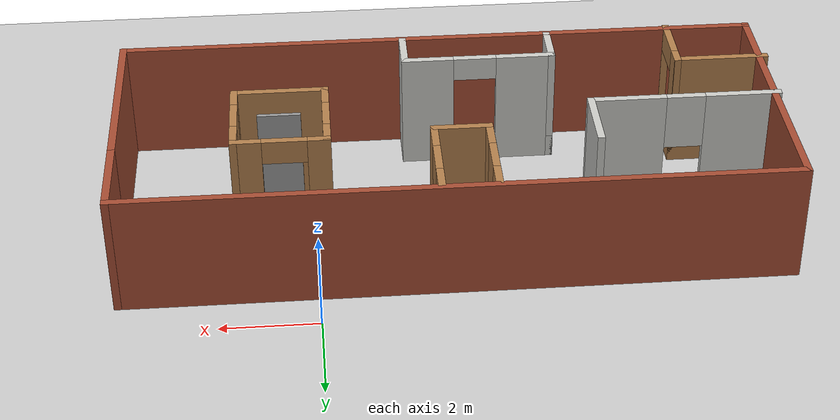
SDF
<sdf version="1.7">
 <world name="default">
  <light name="sun" type="directional">
   <pose>0 0 10 0 -0 0</pose>
   <diffuse>0.8 0.8 0.8 1</diffuse>
   <specular>0.2 0.2 0.2 1</specular>
   <attenuation>
    <range>1000</range>
    <constant>0.9</constant>
    <linear>0.01</linear>
    <quadratic>0.001</quadratic>
   </attenuation>
   <direction>-0.5 0.1 -0.9</direction>
   <spot><inner_angle>0</inner_angle><outer_angle>0</outer_angle><falloff>0</falloff></spot>
  </light>
  <model name="ground_plane">
   <static>1</static>
   <link name="link">
    <collision name="collision">
     <geometry><plane><normal>0 0 1</normal><size>100 100</size></plane></geometry>
     <surface>
      <contact><collide_bitmask>65535</collide_bitmask></contact>
      <friction><ode><mu>100</mu><mu2>50</mu2></ode></friction>
     </surface>
    </collision>
    <visual name="visual">
     <cast_shadows>0</cast_shadows>
     <geometry><plane><normal>0 0 1</normal><size>100 100</size></plane></geometry>
     <material>
      <script><uri>file://media/materials/scripts/gazebo.material</uri><name>Gazebo/Grey</name></script>
     </material>
    </visual>
   </link>
  </model>
  <gravity>0 0 -9.8</gravity>
  <magnetic_field>6e-06 2.3e-05 -4.2e-05</magnetic_field>
  <atmosphere type="adiabatic"/>
  <physics type="ode">
   <max_step_size>0.001</max_step_size>
   <real_time_factor>1</real_time_factor>
   <real_time_update_rate>1000</real_time_update_rate>
  </physics>
  <scene><ambient>0.4 0.4 0.4 1</ambient><background>0.7 0.7 0.7 1</background><shadows>1</shadows></scene>
  <audio><device>default</device></audio>
  <spherical_coordinates>
   <surface_model>EARTH_WGS84</surface_model>
   <latitude_deg>0</latitude_deg>
   <longitude_deg>0</longitude_deg>
   <elevation>0</elevation>
   <heading_deg>0</heading_deg>
  </spherical_coordinates>
  <model name="Untitled">
   <pose>-2.79319 -3.27161 0 0 -0 0</pose>
   <link name="Door_2">
    <collision name="Door_2_Collision">
     <geometry><box><size>0.9 0.17 2</size></box></geometry>
     <pose>0 0 1 0 -0 0</pose>
    </collision>
    <visual name="Door_2_Visual">
     <pose>0 0 1 0 -0 0</pose>
     <geometry><box><size>0.9 0.17 2</size></box></geometry>
     <material>
      <script><uri>file://media/materials/scripts/gazebo.material</uri><name>Gazebo/Grey</name></script>
     </material>
    </visual>
    <pose>3.49956 -1.17505 0 0 -0 0</pose>
   </link>
   <link name="Wall_13">
    <pose>3.45956 0.595396 0 0 -0 3.14159</pose>
    <visual name="Wall_13_Visual_0">
     <pose>-0.684661 0 1.25 0 -0 0</pose>
     <geometry><box><size>0.630679 0.15 2.5</size></box></geometry>
     <material>
      <script><uri>file://media/materials/scripts/gazebo.material</uri><name>Gazebo/Wood</name></script>
      <ambient>1 1 1 1</ambient>
     </material>
     <meta><layer>0</layer></meta>
    </visual>
    <collision name="Wall_13_Collision_0">
     <geometry><box><size>0.630679 0.15 2.5</size></box></geometry>
     <pose>-0.684661 0 1.25 0 -0 0</pose>
    </collision>
    <visual name="Wall_13_Visual_1">
     <pose>0.765339 0 1.25 0 -0 0</pose>
     <geometry><box><size>0.469321 0.15 2.5</size></box></geometry>
     <material>
      <script><uri>file://media/materials/scripts/gazebo.material</uri><name>Gazebo/Wood</name></script>
      <ambient>1 1 1 1</ambient>
     </material>
     <meta><layer>0</layer></meta>
    </visual>
    <collision name="Wall_13_Collision_1">
     <geometry><box><size>0.469321 0.15 2.5</size></box></geometry>
     <pose>0.765339 0 1.25 0 -0 0</pose>
    </collision>
    <visual name="Wall_13_Visual_2">
     <pose>0.080679 0 2.25 0 -0 0</pose>
     <geometry><box><size>0.9 0.15 0.5</size></box></geometry>
     <material>
      <script><uri>file://media/materials/scripts/gazebo.material</uri><name>Gazebo/Wood</name></script>
      <ambient>1 1 1 1</ambient>
     </material>
     <meta><layer>0</layer></meta>
    </visual>
    <collision name="Wall_13_Collision_2">
     <geometry><box><size>0.9 0.15 0.5</size></box></geometry>
     <pose>0.080679 0 2.25 0 -0 0</pose>
    </collision>
   </link>
   <link name="Wall_14">
    <pose>2.53456 -0.329604 0 0 -0 -1.5708</pose>
    <visual name="Wall_14_Visual_0">
     <pose>-0.699664 0 1.25 0 -0 0</pose>
     <geometry><box><size>0.600673 0.15 2.5</size></box></geometry>
     <material>
      <script><uri>file://media/materials/scripts/gazebo.material</uri><name>Gazebo/Wood</name></script>
      <ambient>1 1 1 1</ambient>
     </material>
     <meta><layer>0</layer></meta>
    </visual>
    <collision name="Wall_14_Collision_0">
     <geometry><box><size>0.600673 0.15 2.5</size></box></geometry>
     <pose>-0.699664 0 1.25 0 -0 0</pose>
    </collision>
    <visual name="Wall_14_Visual_1">
     <pose>0.300336 0 0.25 0 -0 0</pose>
     <geometry><box><size>1.39933 0.15 0.5</size></box></geometry>
     <material>
      <script><uri>file://media/materials/scripts/gazebo.material</uri><name>Gazebo/Wood</name></script>
      <ambient>1 1 1 1</ambient>
     </material>
     <meta><layer>0</layer></meta>
    </visual>
    <collision name="Wall_14_Collision_1">
     <geometry><box><size>1.39933 0.15 0.5</size></box></geometry>
     <pose>0.300336 0 0.25 0 -0 0</pose>
    </collision>
    <visual name="Wall_14_Visual_2">
     <pose>0.700336 0 1.5 0 -0 0</pose>
     <geometry><box><size>0.599327 0.15 2</size></box></geometry>
     <material>
      <script><uri>file://media/materials/scripts/gazebo.material</uri><name>Gazebo/Wood</name></script>
      <ambient>1 1 1 1</ambient>
     </material>
     <meta><layer>0</layer></meta>
    </visual>
    <collision name="Wall_14_Collision_2">
     <geometry><box><size>0.599327 0.15 2</size></box></geometry>
     <pose>0.700336 0 1.5 0 -0 0</pose>
    </collision>
    <visual name="Wall_14_Visual_3">
     <pose>0.000673 0 1.9 0 -0 0</pose>
     <geometry><box><size>0.8 0.15 1.2</size></box></geometry>
     <material>
      <script><uri>file://media/materials/scripts/gazebo.material</uri><name>Gazebo/Wood</name></script>
      <ambient>1 1 1 1</ambient>
     </material>
     <meta><layer>0</layer></meta>
    </visual>
    <collision name="Wall_14_Collision_3">
     <geometry><box><size>0.8 0.15 1.2</size></box></geometry>
     <pose>0.000673 0 1.9 0 -0 0</pose>
    </collision>
   </link>
   <link name="Wall_15">
    <collision name="Wall_15_Collision">
     <geometry><box><size>2 0.15 2.5</size></box></geometry>
     <pose>0 0 1.25 0 -0 0</pose>
    </collision>
    <visual name="Wall_15_Visual">
     <pose>0 0 1.25 0 -0 0</pose>
     <geometry><box><size>2 0.15 2.5</size></box></geometry>
     <material>
      <script><uri>file://media/materials/scripts/gazebo.material</uri><name>Gazebo/Wood</name></script>
      <ambient>1 1 1 1</ambient>
     </material>
     <meta><layer>0</layer></meta>
    </visual>
    <pose>3.45956 -1.2546 0 0 -0 0</pose>
   </link>
   <link name="Wall_16">
    <pose>4.38456 -0.329604 0 0 -0 1.5708</pose>
    <visual name="Wall_16_Visual_0">
     <pose>-0.730507 0 1.25 0 -0 0</pose>
     <geometry><box><size>0.538987 0.15 2.5</size></box></geometry>
     <material>
      <script><uri>file://media/materials/scripts/gazebo.material</uri><name>Gazebo/Wood</name></script>
      <ambient>1 1 1 1</ambient>
     </material>
     <meta><layer>0</layer></meta>
    </visual>
    <collision name="Wall_16_Collision_0">
     <geometry><box><size>0.538987 0.15 2.5</size></box></geometry>
     <pose>-0.730507 0 1.25 0 -0 0</pose>
    </collision>
    <visual name="Wall_16_Visual_1">
     <pose>0.269493 0 0.25 0 -0 0</pose>
     <geometry><box><size>1.46101 0.15 0.5</size></box></geometry>
     <material>
      <script><uri>file://media/materials/scripts/gazebo.material</uri><name>Gazebo/Wood</name></script>
      <ambient>1 1 1 1</ambient>
     </material>
     <meta><layer>0</layer></meta>
    </visual>
    <collision name="Wall_16_Collision_1">
     <geometry><box><size>1.46101 0.15 0.5</size></box></geometry>
     <pose>0.269493 0 0.25 0 -0 0</pose>
    </collision>
    <visual name="Wall_16_Visual_2">
     <pose>0.669493 0 1.5 0 -0 0</pose>
     <geometry><box><size>0.661013 0.15 2</size></box></geometry>
     <material>
      <script><uri>file://media/materials/scripts/gazebo.material</uri><name>Gazebo/Wood</name></script>
      <ambient>1 1 1 1</ambient>
     </material>
     <meta><layer>0</layer></meta>
    </visual>
    <collision name="Wall_16_Collision_2">
     <geometry><box><size>0.661013 0.15 2</size></box></geometry>
     <pose>0.669493 0 1.5 0 -0 0</pose>
    </collision>
    <visual name="Wall_16_Visual_3">
     <pose>-0.061013 0 1.9 0 -0 0</pose>
     <geometry><box><size>0.8 0.15 1.2</size></box></geometry>
     <material>
      <script><uri>file://media/materials/scripts/gazebo.material</uri><name>Gazebo/Wood</name></script>
      <ambient>1 1 1 1</ambient>
     </material>
     <meta><layer>0</layer></meta>
    </visual>
    <collision name="Wall_16_Collision_3">
     <geometry><box><size>0.8 0.15 1.2</size></box></geometry>
     <pose>-0.061013 0 1.9 0 -0 0</pose>
    </collision>
   </link>
   <link name="Wall_22">
    <collision name="Wall_22_Collision">
     <geometry><box><size>2 0.15 2.5</size></box></geometry>
     <pose>0 0 1.25 0 -0 0</pose>
    </collision>
    <visual name="Wall_22_Visual">
     <pose>0 0 1.25 0 -0 0</pose>
     <geometry><box><size>2 0.15 2.5</size></box></geometry>
     <material>
      <script><uri>file://media/materials/scripts/gazebo.material</uri><name>Gazebo/Bricks</name></script>
      <ambient>1 1 1 1</ambient>
     </material>
     <meta><layer>0</layer></meta>
    </visual>
    <pose>6.73456 1.5204 0 0 -0 1.5708</pose>
   </link>
   <link name="Wall_23">
    <collision name="Wall_23_Collision">
     <geometry><box><size>13.5 0.15 2.5</size></box></geometry>
     <pose>0 0 1.25 0 -0 0</pose>
    </collision>
    <visual name="Wall_23_Visual">
     <pose>0 0 1.25 0 -0 0</pose>
     <geometry><box><size>13.5 0.15 2.5</size></box></geometry>
     <material>
      <script><uri>file://media/materials/scripts/gazebo.material</uri><name>Gazebo/Bricks</name></script>
      <ambient>1 1 1 1</ambient>
     </material>
     <meta><layer>0</layer></meta>
    </visual>
    <pose>0.059561 2.4454 0 0 -0 3.14159</pose>
   </link>
   <link name="Wall_24">
    <collision name="Wall_24_Collision">
     <geometry><box><size>5.75 0.15 2.5</size></box></geometry>
     <pose>0 0 1.25 0 -0 0</pose>
    </collision>
    <visual name="Wall_24_Visual">
     <pose>0 0 1.25 0 -0 0</pose>
     <geometry><box><size>5.75 0.15 2.5</size></box></geometry>
     <material>
      <script><uri>file://media/materials/scripts/gazebo.material</uri><name>Gazebo/Bricks</name></script>
      <ambient>1 1 1 1</ambient>
     </material>
     <meta><layer>0</layer></meta>
    </visual>
    <pose>-6.61544 -0.354604 0 0 -0 -1.5708</pose>
   </link>
   <link name="Wall_25">
    <collision name="Wall_25_Collision">
     <geometry><box><size>13.5 0.15 2.5</size></box></geometry>
     <pose>0 0 1.25 0 -0 0</pose>
    </collision>
    <visual name="Wall_25_Visual">
     <pose>0 0 1.25 0 -0 0</pose>
     <geometry><box><size>13.5 0.15 2.5</size></box></geometry>
     <material>
      <script><uri>file://media/materials/scripts/gazebo.material</uri><name>Gazebo/Bricks</name></script>
      <ambient>1 1 1 1</ambient>
     </material>
     <meta><layer>0</layer></meta>
    </visual>
    <pose>0.059561 -3.1546 0 0 -0 0</pose>
   </link>
   <link name="Wall_26">
    <collision name="Wall_26_Collision">
     <geometry><box><size>3.9 0.15 2.5</size></box></geometry>
     <pose>0 0 1.25 0 -0 0</pose>
    </collision>
    <visual name="Wall_26_Visual">
     <pose>0 0 1.25 0 -0 0</pose>
     <geometry><box><size>3.9 0.15 2.5</size></box></geometry>
     <material>
      <script><uri>file://media/materials/scripts/gazebo.material</uri><name>Gazebo/Bricks</name></script>
      <ambient>1 1 1 1</ambient>
     </material>
     <meta><layer>0</layer></meta>
    </visual>
    <pose>6.73456 -1.2796 0 0 -0 1.5708</pose>
   </link>
   <link name="Wall_28">
    <pose>-2.27303 -2.68095 0 0 -0 1.5708</pose>
    <visual name="Wall_28_Visual_0">
     <pose>-0.451307 0 1.25 0 -0 0</pose>
     <geometry><box><size>0.097385 0.15 2.5</size></box></geometry>
     <material>
      <script><uri>file://media/materials/scripts/gazebo.material</uri><name>Gazebo/CeilingTiled</name></script>
      <ambient>1 1 1 1</ambient>
     </material>
     <meta><layer>0</layer></meta>
    </visual>
    <collision name="Wall_28_Collision_0">
     <geometry><box><size>0.097385 0.15 2.5</size></box></geometry>
     <pose>-0.451307 0 1.25 0 -0 0</pose>
    </collision>
    <visual name="Wall_28_Visual_1">
     <pose>0.048693 0 0.25 0 -0 0</pose>
     <geometry><box><size>0.902615 0.15 0.5</size></box></geometry>
     <material>
      <script><uri>file://media/materials/scripts/gazebo.material</uri><name>Gazebo/CeilingTiled</name></script>
      <ambient>1 1 1 1</ambient>
     </material>
     <meta><layer>0</layer></meta>
    </visual>
    <collision name="Wall_28_Collision_1">
     <geometry><box><size>0.902615 0.15 0.5</size></box></geometry>
     <pose>0.048693 0 0.25 0 -0 0</pose>
    </collision>
    <visual name="Wall_28_Visual_2">
     <pose>0.448693 0 1.5 0 -0 0</pose>
     <geometry><box><size>0.102615 0.15 2</size></box></geometry>
     <material>
      <script><uri>file://media/materials/scripts/gazebo.material</uri><name>Gazebo/CeilingTiled</name></script>
      <ambient>1 1 1 1</ambient>
     </material>
     <meta><layer>0</layer></meta>
    </visual>
    <collision name="Wall_28_Collision_2">
     <geometry><box><size>0.102615 0.15 2</size></box></geometry>
     <pose>0.448693 0 1.5 0 -0 0</pose>
    </collision>
    <visual name="Wall_28_Visual_3">
     <pose>-0.002615 0 1.9 0 -0 0</pose>
     <geometry><box><size>0.8 0.15 1.2</size></box></geometry>
     <material>
      <script><uri>file://media/materials/scripts/gazebo.material</uri><name>Gazebo/CeilingTiled</name></script>
      <ambient>1 1 1 1</ambient>
     </material>
     <meta><layer>0</layer></meta>
    </visual>
    <collision name="Wall_28_Collision_3">
     <geometry><box><size>0.8 0.15 1.2</size></box></geometry>
     <pose>-0.002615 0 1.9 0 -0 0</pose>
    </collision>
   </link>
   <link name="Wall_29">
    <pose>-0.723032 -2.25595 0 0 -0 0</pose>
    <visual name="Wall_29_Visual_0">
     <pose>-0.9979 0 1.25 0 -0 0</pose>
     <geometry><box><size>1.2542 0.15 2.5</size></box></geometry>
     <material>
      <script><uri>file://media/materials/scripts/gazebo.material</uri><name>Gazebo/CeilingTiled</name></script>
      <ambient>1 1 1 1</ambient>
     </material>
     <meta><layer>0</layer></meta>
    </visual>
    <collision name="Wall_29_Collision_0">
     <geometry><box><size>1.2542 0.15 2.5</size></box></geometry>
     <pose>-0.9979 0 1.25 0 -0 0</pose>
    </collision>
    <visual name="Wall_29_Visual_1">
     <pose>1.0771 0 1.25 0 -0 0</pose>
     <geometry><box><size>1.0958 0.15 2.5</size></box></geometry>
     <material>
      <script><uri>file://media/materials/scripts/gazebo.material</uri><name>Gazebo/CeilingTiled</name></script>
      <ambient>1 1 1 1</ambient>
     </material>
     <meta><layer>0</layer></meta>
    </visual>
    <collision name="Wall_29_Collision_1">
     <geometry><box><size>1.0958 0.15 2.5</size></box></geometry>
     <pose>1.0771 0 1.25 0 -0 0</pose>
    </collision>
    <visual name="Wall_29_Visual_2">
     <pose>0.079199 0 2.25 0 -0 0</pose>
     <geometry><box><size>0.9 0.15 0.5</size></box></geometry>
     <material>
      <script><uri>file://media/materials/scripts/gazebo.material</uri><name>Gazebo/CeilingTiled</name></script>
      <ambient>1 1 1 1</ambient>
     </material>
     <meta><layer>0</layer></meta>
    </visual>
    <collision name="Wall_29_Collision_2">
     <geometry><box><size>0.9 0.15 0.5</size></box></geometry>
     <pose>0.079199 0 2.25 0 -0 0</pose>
    </collision>
   </link>
   <link name="Wall_30">
    <collision name="Wall_30_Collision">
     <geometry><box><size>1 0.15 2.5</size></box></geometry>
     <pose>0 0 1.25 0 -0 0</pose>
    </collision>
    <visual name="Wall_30_Visual">
     <pose>0 0 1.25 0 -0 0</pose>
     <geometry><box><size>1 0.15 2.5</size></box></geometry>
     <material>
      <script><uri>file://media/materials/scripts/gazebo.material</uri><name>Gazebo/CeilingTiled</name></script>
      <ambient>1 1 1 1</ambient>
     </material>
     <meta><layer>0</layer></meta>
    </visual>
    <pose>0.826968 -2.68095 0 0 -0 -1.5708</pose>
   </link>
   <link name="Wall_32">
    <pose>-0.684059 1.37818 0 0 -0 -1.5708</pose>
    <visual name="Wall_32_Visual_0">
     <pose>-0.751591 0 1.25 0 -0 0</pose>
     <geometry><box><size>0.580111 0.15 2.5</size></box></geometry>
     <material>
      <script><uri>file://media/materials/scripts/gazebo.material</uri><name>Gazebo/Wood</name></script>
      <ambient>1 1 1 1</ambient>
     </material>
     <meta><layer>0</layer></meta>
    </visual>
    <collision name="Wall_32_Collision_0">
     <geometry><box><size>0.580111 0.15 2.5</size></box></geometry>
     <pose>-0.751591 0 1.25 0 -0 0</pose>
    </collision>
    <visual name="Wall_32_Visual_1">
     <pose>0.290055 0 0.25 0 -0 0</pose>
     <geometry><box><size>1.50318 0.15 0.5</size></box></geometry>
     <material>
      <script><uri>file://media/materials/scripts/gazebo.material</uri><name>Gazebo/Wood</name></script>
      <ambient>1 1 1 1</ambient>
     </material>
     <meta><layer>0</layer></meta>
    </visual>
    <collision name="Wall_32_Collision_1">
     <geometry><box><size>1.50318 0.15 0.5</size></box></geometry>
     <pose>0.290055 0 0.25 0 -0 0</pose>
    </collision>
    <visual name="Wall_32_Visual_2">
     <pose>0.690055 0 1.5 0 -0 0</pose>
     <geometry><box><size>0.703183 0.15 2</size></box></geometry>
     <material>
      <script><uri>file://media/materials/scripts/gazebo.material</uri><name>Gazebo/Wood</name></script>
      <ambient>1 1 1 1</ambient>
     </material>
     <meta><layer>0</layer></meta>
    </visual>
    <collision name="Wall_32_Collision_2">
     <geometry><box><size>0.703183 0.15 2</size></box></geometry>
     <pose>0.690055 0 1.5 0 -0 0</pose>
    </collision>
    <visual name="Wall_32_Visual_3">
     <pose>-0.061536 0 1.9 0 -0 0</pose>
     <geometry><box><size>0.8 0.15 1.2</size></box></geometry>
     <material>
      <script><uri>file://media/materials/scripts/gazebo.material</uri><name>Gazebo/Wood</name></script>
      <ambient>1 1 1 1</ambient>
     </material>
     <meta><layer>0</layer></meta>
    </visual>
    <collision name="Wall_32_Collision_3">
     <geometry><box><size>0.8 0.15 1.2</size></box></geometry>
     <pose>-0.061536 0 1.9 0 -0 0</pose>
    </collision>
   </link>
   <link name="Wall_33">
    <collision name="Wall_33_Collision">
     <geometry><box><size>1.25 0.15 2.5</size></box></geometry>
     <pose>0 0 1.25 0 -0 0</pose>
    </collision>
    <visual name="Wall_33_Visual">
     <pose>0 0 1.25 0 -0 0</pose>
     <geometry><box><size>1.25 0.15 2.5</size></box></geometry>
     <material>
      <script><uri>file://media/materials/scripts/gazebo.material</uri><name>Gazebo/Wood</name></script>
      <ambient>1 1 1 1</ambient>
     </material>
     <meta><layer>0</layer></meta>
    </visual>
    <pose>-0.134059 0.391421 0 0 -0 0</pose>
   </link>
   <link name="Wall_34">
    <pose>0.415941 1.37818 0 0 -0 1.5708</pose>
    <visual name="Wall_34_Visual_0">
     <pose>-0.690055 0 1.25 0 -0 0</pose>
     <geometry><box><size>0.703183 0.15 2.5</size></box></geometry>
     <material>
      <script><uri>file://media/materials/scripts/gazebo.material</uri><name>Gazebo/Wood</name></script>
      <ambient>1 1 1 1</ambient>
     </material>
     <meta><layer>0</layer></meta>
    </visual>
    <collision name="Wall_34_Collision_0">
     <geometry><box><size>0.703183 0.15 2.5</size></box></geometry>
     <pose>-0.690055 0 1.25 0 -0 0</pose>
    </collision>
    <visual name="Wall_34_Visual_1">
     <pose>0.351591 0 0.25 0 -0 0</pose>
     <geometry><box><size>1.38011 0.15 0.5</size></box></geometry>
     <material>
      <script><uri>file://media/materials/scripts/gazebo.material</uri><name>Gazebo/Wood</name></script>
      <ambient>1 1 1 1</ambient>
     </material>
     <meta><layer>0</layer></meta>
    </visual>
    <collision name="Wall_34_Collision_1">
     <geometry><box><size>1.38011 0.15 0.5</size></box></geometry>
     <pose>0.351591 0 0.25 0 -0 0</pose>
    </collision>
    <visual name="Wall_34_Visual_2">
     <pose>0.751591 0 1.5 0 -0 0</pose>
     <geometry><box><size>0.580111 0.15 2</size></box></geometry>
     <material>
      <script><uri>file://media/materials/scripts/gazebo.material</uri><name>Gazebo/Wood</name></script>
      <ambient>1 1 1 1</ambient>
     </material>
     <meta><layer>0</layer></meta>
    </visual>
    <collision name="Wall_34_Collision_2">
     <geometry><box><size>0.580111 0.15 2</size></box></geometry>
     <pose>0.751591 0 1.5 0 -0 0</pose>
    </collision>
    <visual name="Wall_34_Visual_3">
     <pose>0.061536 0 1.9 0 -0 0</pose>
     <geometry><box><size>0.8 0.15 1.2</size></box></geometry>
     <material>
      <script><uri>file://media/materials/scripts/gazebo.material</uri><name>Gazebo/Wood</name></script>
      <ambient>1 1 1 1</ambient>
     </material>
     <meta><layer>0</layer></meta>
    </visual>
    <collision name="Wall_34_Collision_3">
     <geometry><box><size>0.8 0.15 1.2</size></box></geometry>
     <pose>0.061536 0 1.9 0 -0 0</pose>
    </collision>
   </link>
   <link name="Wall_5">
    <pose>-4.76393 -0.386565 0 0 -0 0</pose>
    <visual name="Wall_5_Visual_0">
     <pose>-1.21415 0 1.25 0 -0 0</pose>
     <geometry><box><size>1.5717 0.15 2.5</size></box></geometry>
     <material>
      <script><uri>file://media/materials/scripts/gazebo.material</uri><name>Gazebo/CeilingTiled</name></script>
      <ambient>1 1 1 1</ambient>
     </material>
     <meta><layer>0</layer></meta>
    </visual>
    <collision name="Wall_5_Collision_0">
     <geometry><box><size>1.5717 0.15 2.5</size></box></geometry>
     <pose>-1.21415 0 1.25 0 -0 0</pose>
    </collision>
    <visual name="Wall_5_Visual_1">
     <pose>0.785852 0 0.25 0 -0 0</pose>
     <geometry><box><size>2.4283 0.15 0.5</size></box></geometry>
     <material>
      <script><uri>file://media/materials/scripts/gazebo.material</uri><name>Gazebo/CeilingTiled</name></script>
      <ambient>1 1 1 1</ambient>
     </material>
     <meta><layer>0</layer></meta>
    </visual>
    <collision name="Wall_5_Collision_1">
     <geometry><box><size>2.4283 0.15 0.5</size></box></geometry>
     <pose>0.785852 0 0.25 0 -0 0</pose>
    </collision>
    <visual name="Wall_5_Visual_2">
     <pose>1.18585 0 1.5 0 -0 0</pose>
     <geometry><box><size>1.6283 0.15 2</size></box></geometry>
     <material>
      <script><uri>file://media/materials/scripts/gazebo.material</uri><name>Gazebo/CeilingTiled</name></script>
      <ambient>1 1 1 1</ambient>
     </material>
     <meta><layer>0</layer></meta>
    </visual>
    <collision name="Wall_5_Collision_2">
     <geometry><box><size>1.6283 0.15 2</size></box></geometry>
     <pose>1.18585 0 1.5 0 -0 0</pose>
    </collision>
    <visual name="Wall_5_Visual_3">
     <pose>-0.028296 0 1.9 0 -0 0</pose>
     <geometry><box><size>0.8 0.15 1.2</size></box></geometry>
     <material>
      <script><uri>file://media/materials/scripts/gazebo.material</uri><name>Gazebo/CeilingTiled</name></script>
      <ambient>1 1 1 1</ambient>
     </material>
     <meta><layer>0</layer></meta>
    </visual>
    <collision name="Wall_5_Collision_3">
     <geometry><box><size>0.8 0.15 1.2</size></box></geometry>
     <pose>-0.028296 0 1.9 0 -0 0</pose>
    </collision>
   </link>
   <link name="Wall_6">
    <collision name="Wall_6_Collision">
     <geometry><box><size>1.5 0.15 2.5</size></box></geometry>
     <pose>0 0 1.25 0 -0 0</pose>
    </collision>
    <visual name="Wall_6_Visual">
     <pose>0 0 1.25 0 -0 0</pose>
     <geometry><box><size>1.5 0.15 2.5</size></box></geometry>
     <material>
      <script><uri>file://media/materials/scripts/gazebo.material</uri><name>Gazebo/CeilingTiled</name></script>
      <ambient>1 1 1 1</ambient>
     </material>
     <meta><layer>0</layer></meta>
    </visual>
    <pose>-2.83894 0.288435 0 0 -0 1.5708</pose>
   </link>
   <link name="Wall_8">
    <collision name="Wall_8_Collision">
     <geometry><box><size>2 0.15 2.5</size></box></geometry>
     <pose>0 0 1.25 0 -0 0</pose>
    </collision>
    <visual name="Wall_8_Visual">
     <pose>0 0 1.25 0 -0 0</pose>
     <geometry><box><size>2 0.15 2.5</size></box></geometry>
     <material>
      <script><uri>file://media/materials/scripts/gazebo.material</uri><name>Gazebo/Wood</name></script>
      <ambient>1 1 1 1</ambient>
     </material>
     <meta><layer>0</layer></meta>
    </visual>
    <pose>-5.80956 -1.84661 0 0 -0 0</pose>
   </link>
   <link name="Wall_9">
    <pose>-4.88456 -2.52161 0 0 -0 -1.5708</pose>
    <visual name="Wall_9_Visual_0">
     <pose>-0.549434 0 1.25 0 -0 0</pose>
     <geometry><box><size>0.401133 0.15 2.5</size></box></geometry>
     <material>
      <script><uri>file://media/materials/scripts/gazebo.material</uri><name>Gazebo/Wood</name></script>
      <ambient>1 1 1 1</ambient>
     </material>
     <meta><layer>0</layer></meta>
    </visual>
    <collision name="Wall_9_Collision_0">
     <geometry><box><size>0.401133 0.15 2.5</size></box></geometry>
     <pose>-0.549434 0 1.25 0 -0 0</pose>
    </collision>
    <visual name="Wall_9_Visual_1">
     <pose>0.650566 0 1.25 0 -0 0</pose>
     <geometry><box><size>0.198867 0.15 2.5</size></box></geometry>
     <material>
      <script><uri>file://media/materials/scripts/gazebo.material</uri><name>Gazebo/Wood</name></script>
      <ambient>1 1 1 1</ambient>
     </material>
     <meta><layer>0</layer></meta>
    </visual>
    <collision name="Wall_9_Collision_1">
     <geometry><box><size>0.198867 0.15 2.5</size></box></geometry>
     <pose>0.650566 0 1.25 0 -0 0</pose>
    </collision>
    <visual name="Wall_9_Visual_2">
     <pose>0.101133 0 2.25 0 -0 0</pose>
     <geometry><box><size>0.9 0.15 0.5</size></box></geometry>
     <material>
      <script><uri>file://media/materials/scripts/gazebo.material</uri><name>Gazebo/Wood</name></script>
      <ambient>1 1 1 1</ambient>
     </material>
     <meta><layer>0</layer></meta>
    </visual>
    <collision name="Wall_9_Collision_2">
     <geometry><box><size>0.9 0.15 0.5</size></box></geometry>
     <pose>0.101133 0 2.25 0 -0 0</pose>
    </collision>
   </link>
   <static>1</static>
  </model>
 </world>
</sdf>
